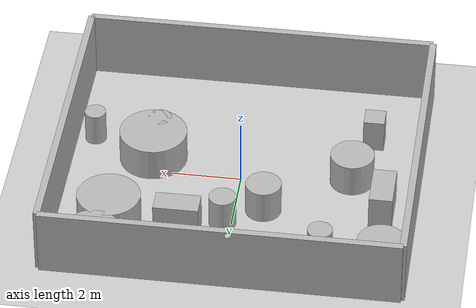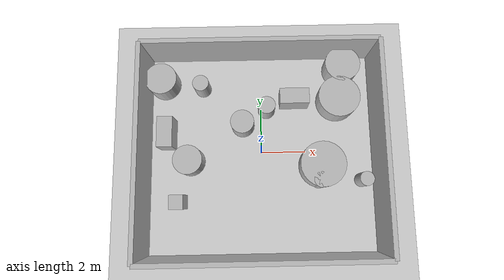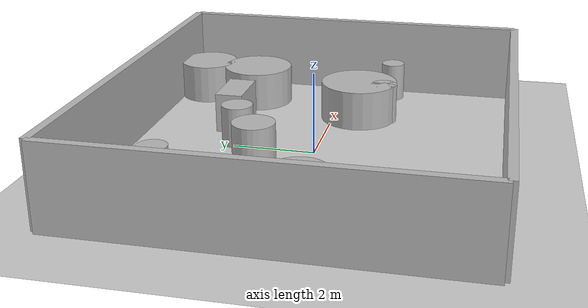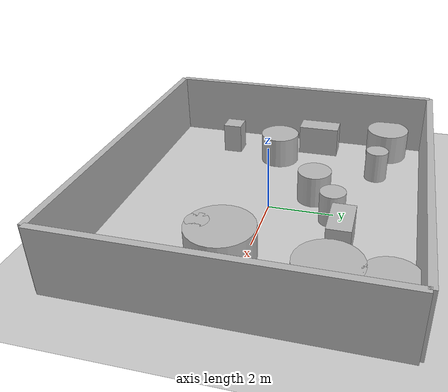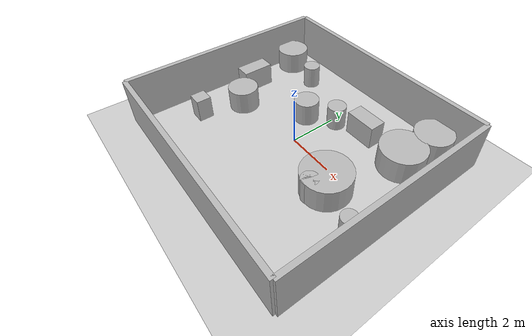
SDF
<?xml version="1.0"?>
<sdf version="1.6">
  <world name="env_36">

    <include><uri>model://ground_plane</uri></include>
    <include><uri>model://sun</uri></include>

    <!-- WALLS -->
    <model name="wall_north"><static>true</static><pose>0 4.571235906686858 1 0 0 0</pose>
      <link name="link"><collision name="collision">
        <geometry><box><size>10.23044589766805 0.2 2</size></box></geometry>
      </collision><visual name="visual">
        <geometry><box><size>10.23044589766805 0.2 2</size></box></geometry>
      </visual></link>
    </model>

    <model name="wall_south"><static>true</static><pose>0 -4.571235906686858 1 0 0 0</pose>
      <link name="link"><collision name="collision">
        <geometry><box><size>10.23044589766805 0.2 2</size></box></geometry>
      </collision><visual name="visual">
        <geometry><box><size>10.23044589766805 0.2 2</size></box></geometry>
      </visual></link>
    </model>

    <model name="wall_east"><static>true</static><pose>5.115222948834025 0 1 0 0 1.57</pose>
      <link name="link"><collision name="collision">
        <geometry><box><size>9.142471813373716 0.2 2</size></box></geometry>
      </collision><visual name="visual">
        <geometry><box><size>9.142471813373716 0.2 2</size></box></geometry>
      </visual></link>
    </model>

    <model name="wall_west"><static>true</static><pose>-5.115222948834025 0 1 0 0 1.57</pose>
      <link name="link"><collision name="collision">
        <geometry><box><size>9.142471813373716 0.2 2</size></box></geometry>
      </collision><visual name="visual">
        <geometry><box><size>9.142471813373716 0.2 2</size></box></geometry>
      </visual></link>
    </model>

    <!-- SENSOR -->

    <model name="lidar_sensor">
      <static>true</static>
      <pose>-0.5428123955912438 3.107038625072727 0.4 0 0 0</pose>
      <link name="link">
        <sensor name="lidar" type="ray">
          <pose>0 0 0 0 0 0</pose>
          <visualize>true</visualize>
          <always_on>true</always_on>
          <update_rate>10</update_rate>
          <ray>
            <scan><horizontal>
              <samples>90</samples>
              <resolution>1</resolution>
              <min_angle>-3.14159</min_angle>
              <max_angle>3.14159</max_angle>
            </horizontal></scan>
            <range><min>0.15</min><max>20.0</max><resolution>0.01</resolution></range>
          </ray>
          <plugin name="lidar_plugin" filename="liblidar_plugin.so"/>
        </sensor>
      </link>
    </model>

    <!-- OBSTACLES -->

    <model name="obstacle_0">
      <static>true</static>
      <pose>0.26408608334848704 1.9856452709876375 0.5 0 0 0</pose>
      <link name="link">
        <collision name="collision">
          <geometry><cylinder><radius>0.39</radius><length>1.0</length></cylinder></geometry>
        </collision>
        <visual name="visual">
          <geometry><cylinder><radius>0.39</radius><length>1.0</length></cylinder></geometry>
        </visual>
      </link>
    </model>

    <model name="obstacle_1">
      <static>true</static>
      <pose>-0.8204264530643939 1.26535037661347 0.5 0 0 0</pose>
      <link name="link">
        <collision name="collision">
          <geometry><cylinder><radius>0.52</radius><length>1.0</length></cylinder></geometry>
        </collision>
        <visual name="visual">
          <geometry><cylinder><radius>0.52</radius><length>1.0</length></cylinder></geometry>
        </visual>
      </link>
    </model>

    <model name="obstacle_2">
      <static>true</static>
      <pose>3.4816757630306787 2.334570003247241 0.5 0 0 0</pose>
      <link name="link">
        <collision name="collision">
          <geometry><cylinder><radius>0.92</radius><length>1.0</length></cylinder></geometry>
        </collision>
        <visual name="visual">
          <geometry><cylinder><radius>0.92</radius><length>1.0</length></cylinder></geometry>
        </visual>
      </link>
    </model>

    <model name="obstacle_3">
      <static>true</static>
      <pose>-3.6660515911502025 -2.1644742246680284 0.5 0 0 0</pose>
      <link name="link">
        <collision name="collision">
          <geometry><box><size>0.61 0.62 1.0</size></box></geometry>
        </collision>
        <visual name="visual">
          <geometry><box><size>0.61 0.62 1.0</size></box></geometry>
        </visual>
      </link>
    </model>

    <model name="obstacle_4">
      <static>true</static>
      <pose>2.6615184510955654 -0.6513351167058539 0.5 0 0 0</pose>
      <link name="link">
        <collision name="collision">
          <geometry><cylinder><radius>0.99</radius><length>1.0</length></cylinder></geometry>
        </collision>
        <visual name="visual">
          <geometry><cylinder><radius>0.99</radius><length>1.0</length></cylinder></geometry>
        </visual>
      </link>
    </model>

    <model name="obstacle_5">
      <static>true</static>
      <pose>4.486529102443094 -1.3209152072782615 0.5 0 0 0</pose>
      <link name="link">
        <collision name="collision">
          <geometry><cylinder><radius>0.31</radius><length>1.0</length></cylinder></geometry>
        </collision>
        <visual name="visual">
          <geometry><cylinder><radius>0.31</radius><length>1.0</length></cylinder></geometry>
        </visual>
      </link>
    </model>

    <model name="obstacle_6">
      <static>true</static>
      <pose>-4.210387291725032 0.8868297890093872 0.5 0 0 0</pose>
      <link name="link">
        <collision name="collision">
          <geometry><box><size>0.68 1.35 1.0</size></box></geometry>
        </collision>
        <visual name="visual">
          <geometry><box><size>0.68 1.35 1.0</size></box></geometry>
        </visual>
      </link>
    </model>

    <model name="obstacle_7">
      <static>true</static>
      <pose>-3.2000449191387563 -0.36428731267967773 0.5 0 0 0</pose>
      <link name="link">
        <collision name="collision">
          <geometry><cylinder><radius>0.64</radius><length>1.0</length></cylinder></geometry>
        </collision>
        <visual name="visual">
          <geometry><cylinder><radius>0.64</radius><length>1.0</length></cylinder></geometry>
        </visual>
      </link>
    </model>

    <model name="obstacle_8">
      <static>true</static>
      <pose>1.5079238098102667 2.3938892207840095 0.5 0 0 0</pose>
      <link name="link">
        <collision name="collision">
          <geometry><box><size>1.3 0.69 1.0</size></box></geometry>
        </collision>
        <visual name="visual">
          <geometry><box><size>1.3 0.69 1.0</size></box></geometry>
        </visual>
      </link>
    </model>

    <model name="obstacle_9">
      <static>true</static>
      <pose>-2.6503858555656628 3.041382259504183 0.5 0 0 0</pose>
      <link name="link">
        <collision name="collision">
          <geometry><cylinder><radius>0.36</radius><length>1.0</length></cylinder></geometry>
        </collision>
        <visual name="visual">
          <geometry><cylinder><radius>0.36</radius><length>1.0</length></cylinder></geometry>
        </visual>
      </link>
    </model>

    <model name="obstacle_10">
      <static>true</static>
      <pose>3.69614291753913 3.8296388862804793 0.5 0 0 0</pose>
      <link name="link">
        <collision name="collision">
          <geometry><cylinder><radius>0.78</radius><length>1.0</length></cylinder></geometry>
        </collision>
        <visual name="visual">
          <geometry><cylinder><radius>0.78</radius><length>1.0</length></cylinder></geometry>
        </visual>
      </link>
    </model>

    <model name="obstacle_11">
      <static>true</static>
      <pose>2.563993764907498 -1.321546400589272 0.5 0 0 0</pose>
      <link name="link">
        <collision name="collision">
          <geometry><cylinder><radius>0.34</radius><length>1.0</length></cylinder></geometry>
        </collision>
        <visual name="visual">
          <geometry><cylinder><radius>0.34</radius><length>1.0</length></cylinder></geometry>
        </visual>
      </link>
    </model>

    <model name="obstacle_12">
      <static>true</static>
      <pose>-4.413777706531031 3.281298771796263 0.5 0 0 0</pose>
      <link name="link">
        <collision name="collision">
          <geometry><cylinder><radius>0.7</radius><length>1.0</length></cylinder></geometry>
        </collision>
        <visual name="visual">
          <geometry><cylinder><radius>0.7</radius><length>1.0</length></cylinder></geometry>
        </visual>
      </link>
    </model>

  </world>
</sdf>
